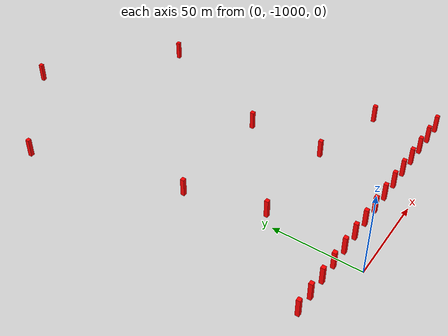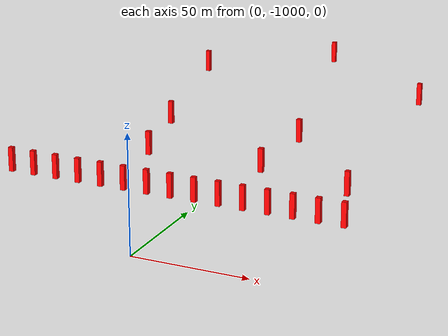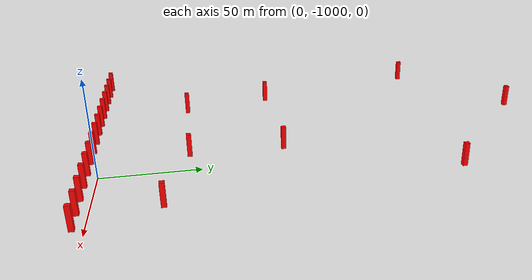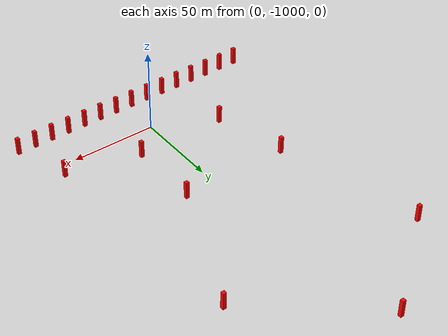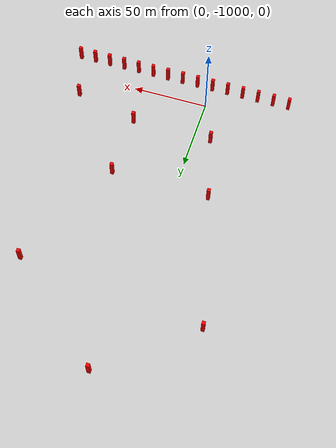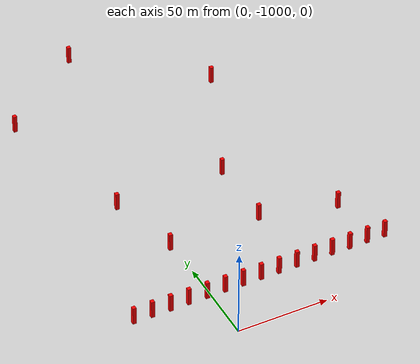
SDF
<sdf version="1.9">
 <world name="default">
  <model name="start_area_23408">
   <static>true</static>
   <pose>-55.0 -995.0 30 0 0 0</pose>
   <link name="start_area_link_23408">
    <collision name="start_area_collision_23408"><geometry><box><size>2 2 20</size></box></geometry></collision>
    <visual name="start_area_visual_23408">
     <geometry><box><size>2 2 10</size></box></geometry>
     <material><ambient>1 0 0 1</ambient><diffuse>1 0 0 1</diffuse><specular>0.1 0.1 0.1 1</specular></material>
    </visual>
   </link>
  </model>
  <model name="start_area_23409">
   <static>true</static>
   <pose>-45.0 -995.0 30 0 0 0</pose>
   <link name="start_area_link_23409">
    <collision name="start_area_collision_23409"><geometry><box><size>2 2 20</size></box></geometry></collision>
    <visual name="start_area_visual_23409">
     <geometry><box><size>2 2 10</size></box></geometry>
     <material><ambient>1 0 0 1</ambient><diffuse>1 0 0 1</diffuse><specular>0.1 0.1 0.1 1</specular></material>
    </visual>
   </link>
  </model>
  <model name="start_area_23410">
   <static>true</static>
   <pose>-35.0 -995.0 30 0 0 0</pose>
   <link name="start_area_link_23410">
    <collision name="start_area_collision_23410"><geometry><box><size>2 2 20</size></box></geometry></collision>
    <visual name="start_area_visual_23410">
     <geometry><box><size>2 2 10</size></box></geometry>
     <material><ambient>1 0 0 1</ambient><diffuse>1 0 0 1</diffuse><specular>0.1 0.1 0.1 1</specular></material>
    </visual>
   </link>
  </model>
  <model name="start_area_23411">
   <static>true</static>
   <pose>-25.0 -995.0 30 0 0 0</pose>
   <link name="start_area_link_23411">
    <collision name="start_area_collision_23411"><geometry><box><size>2 2 20</size></box></geometry></collision>
    <visual name="start_area_visual_23411">
     <geometry><box><size>2 2 10</size></box></geometry>
     <material><ambient>1 0 0 1</ambient><diffuse>1 0 0 1</diffuse><specular>0.1 0.1 0.1 1</specular></material>
    </visual>
   </link>
  </model>
  <model name="start_area_23412">
   <static>true</static>
   <pose>-15.0 -995.0 30 0 0 0</pose>
   <link name="start_area_link_23412">
    <collision name="start_area_collision_23412"><geometry><box><size>2 2 20</size></box></geometry></collision>
    <visual name="start_area_visual_23412">
     <geometry><box><size>2 2 10</size></box></geometry>
     <material><ambient>1 0 0 1</ambient><diffuse>1 0 0 1</diffuse><specular>0.1 0.1 0.1 1</specular></material>
    </visual>
   </link>
  </model>
  <model name="start_area_23413">
   <static>true</static>
   <pose>-5.0 -995.0 30 0 0 0</pose>
   <link name="start_area_link_23413">
    <collision name="start_area_collision_23413"><geometry><box><size>2 2 20</size></box></geometry></collision>
    <visual name="start_area_visual_23413">
     <geometry><box><size>2 2 10</size></box></geometry>
     <material><ambient>1 0 0 1</ambient><diffuse>1 0 0 1</diffuse><specular>0.1 0.1 0.1 1</specular></material>
    </visual>
   </link>
  </model>
  <model name="start_area_23414">
   <static>true</static>
   <pose>5.0 -995.0 30 0 0 0</pose>
   <link name="start_area_link_23414">
    <collision name="start_area_collision_23414"><geometry><box><size>2 2 20</size></box></geometry></collision>
    <visual name="start_area_visual_23414">
     <geometry><box><size>2 2 10</size></box></geometry>
     <material><ambient>1 0 0 1</ambient><diffuse>1 0 0 1</diffuse><specular>0.1 0.1 0.1 1</specular></material>
    </visual>
   </link>
  </model>
  <model name="start_area_23415">
   <static>true</static>
   <pose>15.0 -995.0 30 0 0 0</pose>
   <link name="start_area_link_23415">
    <collision name="start_area_collision_23415"><geometry><box><size>2 2 20</size></box></geometry></collision>
    <visual name="start_area_visual_23415">
     <geometry><box><size>2 2 10</size></box></geometry>
     <material><ambient>1 0 0 1</ambient><diffuse>1 0 0 1</diffuse><specular>0.1 0.1 0.1 1</specular></material>
    </visual>
   </link>
  </model>
  <model name="start_area_23416">
   <static>true</static>
   <pose>25.0 -995.0 30 0 0 0</pose>
   <link name="start_area_link_23416">
    <collision name="start_area_collision_23416"><geometry><box><size>2 2 20</size></box></geometry></collision>
    <visual name="start_area_visual_23416">
     <geometry><box><size>2 2 10</size></box></geometry>
     <material><ambient>1 0 0 1</ambient><diffuse>1 0 0 1</diffuse><specular>0.1 0.1 0.1 1</specular></material>
    </visual>
   </link>
  </model>
  <model name="start_area_23417">
   <static>true</static>
   <pose>35.0 -995.0 30 0 0 0</pose>
   <link name="start_area_link_23417">
    <collision name="start_area_collision_23417"><geometry><box><size>2 2 20</size></box></geometry></collision>
    <visual name="start_area_visual_23417">
     <geometry><box><size>2 2 10</size></box></geometry>
     <material><ambient>1 0 0 1</ambient><diffuse>1 0 0 1</diffuse><specular>0.1 0.1 0.1 1</specular></material>
    </visual>
   </link>
  </model>
  <model name="start_area_23418">
   <static>true</static>
   <pose>45.0 -995.0 30 0 0 0</pose>
   <link name="start_area_link_23418">
    <collision name="start_area_collision_23418"><geometry><box><size>2 2 20</size></box></geometry></collision>
    <visual name="start_area_visual_23418">
     <geometry><box><size>2 2 10</size></box></geometry>
     <material><ambient>1 0 0 1</ambient><diffuse>1 0 0 1</diffuse><specular>0.1 0.1 0.1 1</specular></material>
    </visual>
   </link>
  </model>
  <model name="start_area_23419">
   <static>true</static>
   <pose>55.0 -995.0 30 0 0 0</pose>
   <link name="start_area_link_23419">
    <collision name="start_area_collision_23419"><geometry><box><size>2 2 20</size></box></geometry></collision>
    <visual name="start_area_visual_23419">
     <geometry><box><size>2 2 10</size></box></geometry>
     <material><ambient>1 0 0 1</ambient><diffuse>1 0 0 1</diffuse><specular>0.1 0.1 0.1 1</specular></material>
    </visual>
   </link>
  </model>
  <model name="start_area_23420">
   <static>true</static>
   <pose>65.0 -995.0 30 0 0 0</pose>
   <link name="start_area_link_23420">
    <collision name="start_area_collision_23420"><geometry><box><size>2 2 20</size></box></geometry></collision>
    <visual name="start_area_visual_23420">
     <geometry><box><size>2 2 10</size></box></geometry>
     <material><ambient>1 0 0 1</ambient><diffuse>1 0 0 1</diffuse><specular>0.1 0.1 0.1 1</specular></material>
    </visual>
   </link>
  </model>
  <model name="start_area_23421">
   <static>true</static>
   <pose>75.0 -995.0 30 0 0 0</pose>
   <link name="start_area_link_23421">
    <collision name="start_area_collision_23421"><geometry><box><size>2 2 20</size></box></geometry></collision>
    <visual name="start_area_visual_23421">
     <geometry><box><size>2 2 10</size></box></geometry>
     <material><ambient>1 0 0 1</ambient><diffuse>1 0 0 1</diffuse><specular>0.1 0.1 0.1 1</specular></material>
    </visual>
   </link>
  </model>
  <model name="start_area_23422">
   <static>true</static>
   <pose>85.0 -995.0 30 0 0 0</pose>
   <link name="start_area_link_23422">
    <collision name="start_area_collision_23422"><geometry><box><size>2 2 20</size></box></geometry></collision>
    <visual name="start_area_visual_23422">
     <geometry><box><size>2 2 10</size></box></geometry>
     <material><ambient>1 0 0 1</ambient><diffuse>1 0 0 1</diffuse><specular>0.1 0.1 0.1 1</specular></material>
    </visual>
   </link>
  </model>
  <model name="start_area_20881">
   <static>true</static>
   <pose>5.0 -795.0 30 0 0 0</pose>
   <link name="start_area_link_20881">
    <collision name="start_area_collision_20881"><geometry><box><size>2 2 20</size></box></geometry></collision>
    <visual name="start_area_visual_20881">
     <geometry><box><size>2 2 10</size></box></geometry>
     <material><ambient>1 0 0 1</ambient><diffuse>1 0 0 1</diffuse><specular>0.1 0.1 0.1 1</specular></material>
    </visual>
   </link>
  </model>
  <model name="start_area_22851">
   <static>true</static>
   <pose>35.0 -955.0 30 0 0 0</pose>
   <link name="start_area_link_22851">
    <collision name="start_area_collision_22851"><geometry><box><size>2 2 20</size></box></geometry></collision>
    <visual name="start_area_visual_22851">
     <geometry><box><size>2 2 10</size></box></geometry>
     <material><ambient>1 0 0 1</ambient><diffuse>1 0 0 1</diffuse><specular>0.1 0.1 0.1 1</specular></material>
    </visual>
   </link>
  </model>
  <model name="start_area_22846">
   <static>true</static>
   <pose>-15.0 -955.0 30 0 0 0</pose>
   <link name="start_area_link_22846">
    <collision name="start_area_collision_22846"><geometry><box><size>2 2 20</size></box></geometry></collision>
    <visual name="start_area_visual_22846">
     <geometry><box><size>2 2 10</size></box></geometry>
     <material><ambient>1 0 0 1</ambient><diffuse>1 0 0 1</diffuse><specular>0.1 0.1 0.1 1</specular></material>
    </visual>
   </link>
  </model>
  <model name="start_area_23001">
   <static>true</static>
   <pose>75.0 -965.0 30 0 0 0</pose>
   <link name="start_area_link_23001">
    <collision name="start_area_collision_23001"><geometry><box><size>2 2 20</size></box></geometry></collision>
    <visual name="start_area_visual_23001">
     <geometry><box><size>2 2 10</size></box></geometry>
     <material><ambient>1 0 0 1</ambient><diffuse>1 0 0 1</diffuse><specular>0.1 0.1 0.1 1</specular></material>
    </visual>
   </link>
  </model>
  <model name="start_area_22317">
   <static>true</static>
   <pose>35.0 -915.0 30 0 0 0</pose>
   <link name="start_area_link_22317">
    <collision name="start_area_collision_22317"><geometry><box><size>2 2 20</size></box></geometry></collision>
    <visual name="start_area_visual_22317">
     <geometry><box><size>2 2 10</size></box></geometry>
     <material><ambient>1 0 0 1</ambient><diffuse>1 0 0 1</diffuse><specular>0.1 0.1 0.1 1</specular></material>
    </visual>
   </link>
  </model>
  <model name="start_area_21303">
   <static>true</static>
   <pose>-45.0 -835.0 30 0 0 0</pose>
   <link name="start_area_link_21303">
    <collision name="start_area_collision_21303"><geometry><box><size>2 2 20</size></box></geometry></collision>
    <visual name="start_area_visual_21303">
     <geometry><box><size>2 2 10</size></box></geometry>
     <material><ambient>1 0 0 1</ambient><diffuse>1 0 0 1</diffuse><specular>0.1 0.1 0.1 1</specular></material>
    </visual>
   </link>
  </model>
  <model name="start_area_21420">
   <static>true</static>
   <pose>65.0 -845.0 30 0 0 0</pose>
   <link name="start_area_link_21420">
    <collision name="start_area_collision_21420"><geometry><box><size>2 2 20</size></box></geometry></collision>
    <visual name="start_area_visual_21420">
     <geometry><box><size>2 2 10</size></box></geometry>
     <material><ambient>1 0 0 1</ambient><diffuse>1 0 0 1</diffuse><specular>0.1 0.1 0.1 1</specular></material>
    </visual>
   </link>
  </model>
  <model name="start_area_22311">
   <static>true</static>
   <pose>-25.0 -915.0 30 0 0 0</pose>
   <link name="start_area_link_22311">
    <collision name="start_area_collision_22311"><geometry><box><size>2 2 20</size></box></geometry></collision>
    <visual name="start_area_visual_22311">
     <geometry><box><size>2 2 10</size></box></geometry>
     <material><ambient>1 0 0 1</ambient><diffuse>1 0 0 1</diffuse><specular>0.1 0.1 0.1 1</specular></material>
    </visual>
   </link>
  </model>
 </world>
</sdf>
